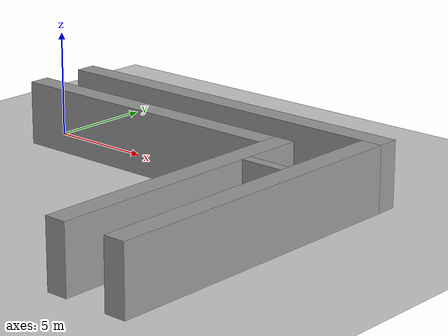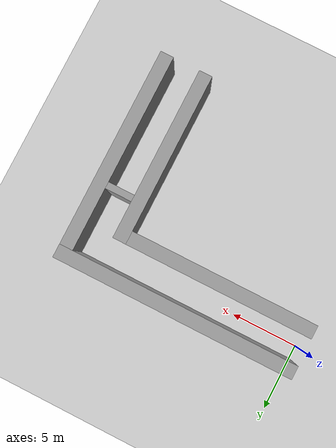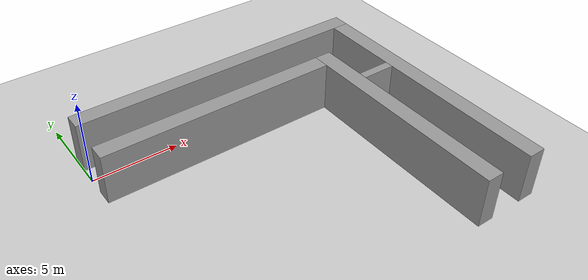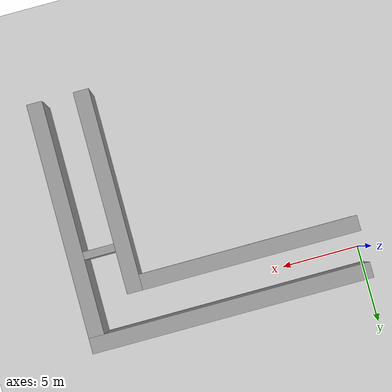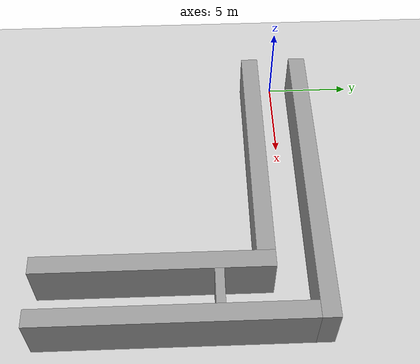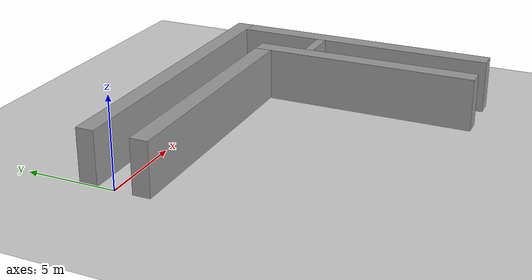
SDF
<sdf version='1.4'>
  <world name='default'>
    <light name='sun' type='directional'>
      <cast_shadows>1</cast_shadows>
      <pose>0 0 10 0 -0 0</pose>
      <diffuse>0.8 0.8 0.8 1</diffuse>
      <specular>0.2 0.2 0.2 1</specular>
      <attenuation>
        <range>1000</range>
        <constant>0.9</constant>
        <linear>0.01</linear>
        <quadratic>0.001</quadratic>
      </attenuation>
      <direction>-0.5 0.1 -0.9</direction>
    </light>
    <model name='ground_plane'>
      <static>1</static>
      <link name='link'>
        <collision name='collision'>
          <geometry>
            <plane>
              <normal>0 0 1</normal>
              <size>100 100</size>
            </plane>
          </geometry>
          <surface>
            <friction>
              <ode>
                <mu>100</mu>
                <mu2>50</mu2>
              </ode>
            </friction>
            <bounce/>
            <contact>
              <ode/>
            </contact>
          </surface>
          <max_contacts>10</max_contacts>
        </collision>
        <visual name='visual'>
          <cast_shadows>0</cast_shadows>
          <geometry>
            <plane>
              <normal>0 0 1</normal>
              <size>100 100</size>
            </plane>
          </geometry>
          <material>
            <script>
              <uri>file://media/materials/scripts/gazebo.material</uri>
              <name>Gazebo/Grey</name>
            </script>
          </material>
        </visual>
        <velocity_decay>
          <linear>0</linear>
          <angular>0</angular>
        </velocity_decay>
        <self_collide>0</self_collide>
        <kinematic>0</kinematic>
        <gravity>1</gravity>
      </link>
    </model>
    <physics type='ode'>
      <max_step_size>0.01</max_step_size>
      <real_time_factor>1</real_time_factor>
      <real_time_update_rate>100</real_time_update_rate>
      <gravity>0 0 -9.8</gravity>
    </physics>
    <scene>
      <ambient>0.4 0.4 0.4 1</ambient>
      <background>0.7 0.7 0.7 1</background>
      <shadows>1</shadows>
    </scene>
    <spherical_coordinates>
      <surface_model>EARTH_WGS84</surface_model>
      <latitude_deg>0</latitude_deg>
      <longitude_deg>0</longitude_deg>
      <elevation>0</elevation>
      <heading_deg>0</heading_deg>
    </spherical_coordinates>
    <model name='box_1'>
      <pose>7 -1.5 1.5 0 -0 0</pose>
      <link name='link'>
        <inertial>
          <mass>1000</mass>
          <inertia>
            <ixx>1000</ixx>
            <ixy>0</ixy>
            <ixz>0</ixz>
            <iyy>1000</iyy>
            <iyz>0</iyz>
            <izz>1000</izz>
          </inertia>
        </inertial>
        <collision name='collision'>
          <geometry>
            <box>
              <size>14 1 3</size>
            </box>
          </geometry>
          <max_contacts>10</max_contacts>
          <surface>
            <bounce/>
            <friction>
              <ode/>
            </friction>
            <contact>
              <ode/>
            </contact>
          </surface>
        </collision>
        <visual name='visual'>
          <geometry>
            <box>
              <size>14 1 3</size>
            </box>
          </geometry>
          <material>
            <script>
              <uri>file://media/materials/scripts/gazebo.material</uri>
              <name>Gazebo/Grey</name>
            </script>
          </material>
        </visual>
        <velocity_decay>
          <linear>0</linear>
          <angular>0</angular>
        </velocity_decay>
        <self_collide>0</self_collide>
        <kinematic>0</kinematic>
        <gravity>1</gravity>
      </link>
      <static>1</static>
    </model>
    <model name='box_2'>
      <pose>14.5 -7.5 1.5 0 -0 0</pose>
      <link name='link'>
        <inertial>
          <mass>1000</mass>
          <inertia>
            <ixx>1000</ixx>
            <ixy>0</ixy>
            <ixz>0</ixz>
            <iyy>1000</iyy>
            <iyz>0</iyz>
            <izz>1000</izz>
          </inertia>
        </inertial>
        <collision name='collision'>
          <geometry>
            <box>
              <size>1 13 3</size>
            </box>
          </geometry>
          <max_contacts>10</max_contacts>
          <surface>
            <bounce/>
            <friction>
              <ode/>
            </friction>
            <contact>
              <ode/>
            </contact>
          </surface>
        </collision>
        <visual name='visual'>
          <geometry>
            <box>
              <size>1 13 3</size>
            </box>
          </geometry>
          <material>
            <script>
              <uri>file://media/materials/scripts/gazebo.material</uri>
              <name>Gazebo/Grey</name>
            </script>
          </material>
        </visual>
        <velocity_decay>
          <linear>0</linear>
          <angular>0</angular>
        </velocity_decay>
        <self_collide>0</self_collide>
        <kinematic>0</kinematic>
        <gravity>1</gravity>
      </link>
      <static>1</static>
    </model>
    <model name='box_3'>
      <pose>17.5 -6.5 1.5 0 -0 0</pose>
      <link name='link'>
        <inertial>
          <mass>1000</mass>
          <inertia>
            <ixx>1000</ixx>
            <ixy>0</ixy>
            <ixz>0</ixz>
            <iyy>1000</iyy>
            <iyz>0</iyz>
            <izz>1000</izz>
          </inertia>
        </inertial>
        <collision name='collision'>
          <geometry>
            <box>
              <size>1 15 3</size>
            </box>
          </geometry>
          <max_contacts>10</max_contacts>
          <surface>
            <bounce/>
            <friction>
              <ode/>
            </friction>
            <contact>
              <ode/>
            </contact>
          </surface>
        </collision>
        <visual name='visual'>
          <geometry>
            <box>
              <size>1 15 3</size>
            </box>
          </geometry>
          <material>
            <script>
              <uri>file://media/materials/scripts/gazebo.material</uri>
              <name>Gazebo/Grey</name>
            </script>
          </material>
        </visual>
        <velocity_decay>
          <linear>0</linear>
          <angular>0</angular>
        </velocity_decay>
        <self_collide>0</self_collide>
        <kinematic>0</kinematic>
        <gravity>1</gravity>
      </link>
      <static>1</static>
    </model>
    <model name='box_4'>
      <pose>9 1.5 1.5 0 -0 0</pose>
      <link name='link'>
        <inertial>
          <mass>1000</mass>
          <inertia>
            <ixx>1000</ixx>
            <ixy>0</ixy>
            <ixz>0</ixz>
            <iyy>1000</iyy>
            <iyz>0</iyz>
            <izz>1000</izz>
          </inertia>
        </inertial>
        <collision name='collision'>
          <geometry>
            <box>
              <size>18 1 3</size>
            </box>
          </geometry>
          <max_contacts>10</max_contacts>
          <surface>
            <bounce/>
            <friction>
              <ode/>
            </friction>
            <contact>
              <ode/>
            </contact>
          </surface>
        </collision>
        <visual name='visual'>
          <geometry>
            <box>
              <size>18 1 3</size>
            </box>
          </geometry>
          <material>
            <script>
              <uri>file://media/materials/scripts/gazebo.material</uri>
              <name>Gazebo/Grey</name>
            </script>
          </material>
        </visual>
        <velocity_decay>
          <linear>0</linear>
          <angular>0</angular>
        </velocity_decay>
        <self_collide>0</self_collide>
        <kinematic>0</kinematic>
        <gravity>1</gravity>
      </link>
      <static>1</static>
    </model>
    <model name='box_5'>
      <pose>16 -4 1.5 0 -0 0</pose>
      <link name='link'>
        <inertial>
          <mass>1000</mass>
          <inertia>
            <ixx>1000</ixx>
            <ixy>0</ixy>
            <ixz>0</ixz>
            <iyy>1000</iyy>
            <iyz>0</iyz>
            <izz>1000</izz>
          </inertia>
        </inertial>
        <collision name='collision'>
          <geometry>
            <box>
              <size>2 0.5 3</size>
            </box>
          </geometry>
          <max_contacts>10</max_contacts>
          <surface>
            <bounce/>
            <friction>
              <ode/>
            </friction>
            <contact>
              <ode/>
            </contact>
          </surface>
        </collision>
        <visual name='visual'>
          <geometry>
            <box>
              <size>2 0.5 3</size>
            </box>
          </geometry>
          <material>
            <script>
              <uri>file://media/materials/scripts/gazebo.material</uri>
              <name>Gazebo/Grey</name>
            </script>
          </material>
        </visual>
        <velocity_decay>
          <linear>0</linear>
          <angular>0</angular>
        </velocity_decay>
        <self_collide>0</self_collide>
        <kinematic>0</kinematic>
        <gravity>1</gravity>
      </link>
      <static>1</static>
    </model>
    <gui fullscreen='0'>
      <camera name='user_camera'>
        <pose>3.14796 -7.99288 40.8348 1.15202e-17 1.41964 0.02019</pose>
        <view_controller>orbit</view_controller>
      </camera>
    </gui>
  </world>
</sdf>
